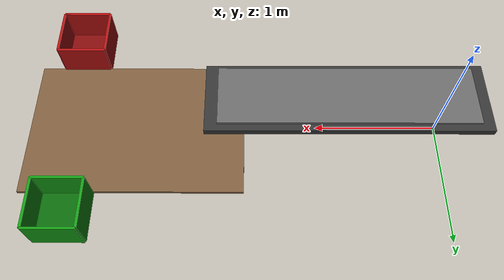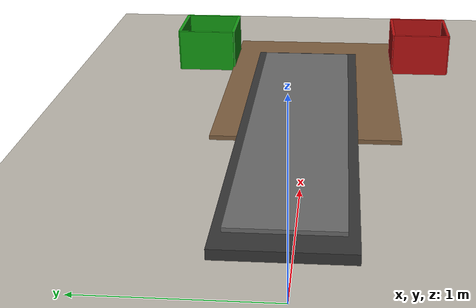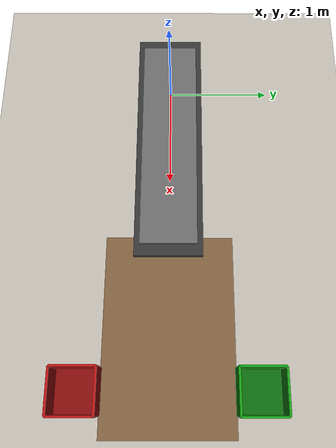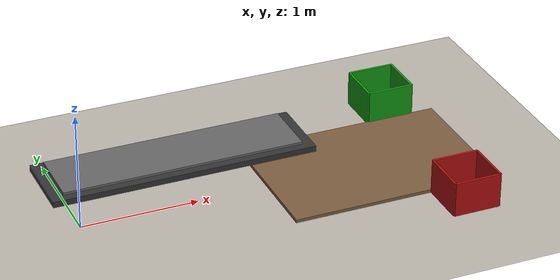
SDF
<?xml version="1.0"?>
<sdf version="1.6">
  <world name="warehouse">

    <!-- ── Physics ──────────────────────────────────────────────────────────── -->
    <physics name="default_physics" type="ode">
      <max_step_size>0.001</max_step_size>
      <real_time_factor>1</real_time_factor>
      <real_time_update_rate>1000</real_time_update_rate>
    </physics>

    <!-- ── Lighting: inline sun (replaces model://sun) ───────────────────── -->
    <light name="sun" type="directional">
      <cast_shadows>true</cast_shadows>
      <pose>0 0 10 0 0 0</pose>
      <diffuse>0.85 0.85 0.85 1</diffuse>
      <specular>0.20 0.20 0.20 1</specular>
      <attenuation>
        <range>1000</range>
        <constant>0.90</constant>
        <linear>0.01</linear>
        <quadratic>0.001</quadratic>
      </attenuation>
      <direction>-0.5 0.1 -0.9</direction>
    </light>

    <!-- Ambient fill light -->
    <light name="ambient_fill" type="directional">
      <cast_shadows>false</cast_shadows>
      <pose>0 0 5 0 0 0</pose>
      <diffuse>0.4 0.4 0.4 1</diffuse>
      <specular>0.05 0.05 0.05 1</specular>
      <direction>0 0 -1</direction>
    </light>

    <!-- ── Ground plane: inline model (replaces model://ground_plane) ─────── -->
    <model name="ground_plane">
      <static>true</static>
      <link name="ground_link">
        <collision name="ground_collision">
          <geometry>
            <plane>
              <normal>0 0 1</normal>
              <size>100 100</size>
            </plane>
          </geometry>
          <surface>
            <friction>
              <ode><mu>0.8</mu><mu2>0.8</mu2></ode>
            </friction>
          </surface>
        </collision>
        <visual name="ground_visual">
          <geometry>
            <plane>
              <normal>0 0 1</normal>
              <size>100 100</size>
            </plane>
          </geometry>
          <material>
            <ambient>0.72 0.70 0.66 1</ambient>
            <diffuse>0.72 0.70 0.66 1</diffuse>
          </material>
        </visual>
      </link>
    </model>

    <!-- ── Main Conveyor Belt ─────────────────────────────────────────────── -->
    <!--
      model://conveyor_belt resolves to warehouse_gazebo/models/conveyor_belt/
      Now works because model.config was converted from YAML to valid XML.
    -->
    <include>
      <uri>model://conveyor_belt</uri>
      <pose>0.8 0 0 0 0 0</pose>
    </include>

    <!-- ── Pick Area Table ────────────────────────────────────────────────── -->
    <model name="pick_table">
      <static>true</static>
      <pose>2.5 0 0.0 0 0 0</pose>
      <link name="table_link">
        <visual name="table_top_visual">
          <geometry><box><size>1.8 1.2 0.05</size></box></geometry>
          <material><ambient>0.40 0.30 0.20 1</ambient><diffuse>0.48 0.36 0.24 1</diffuse></material>
        </visual>
        <collision name="table_top_collision">
          <geometry><box><size>1.8 1.2 0.05</size></box></geometry>
        </collision>
      </link>
    </model>

    <!-- ── Good Product Bin (green) ──────────────────────────────────────── -->
    <!--
      FIX: model://bin_good never existed in the package. Replaced with an
      inline static box in green to visually mark the "accept" destination.
    -->
    <model name="bin_good">
      <static>true</static>
      <pose>3.0 0.8 0.15 0 0 0</pose>
      <link name="bin_good_link">
        <!-- back wall -->
        <visual name="back_visual">
          <pose>0 -0.2 0 0 0 0</pose>
          <geometry><box><size>0.40 0.02 0.30</size></box></geometry>
          <material><ambient>0.05 0.50 0.05 1</ambient><diffuse>0.07 0.60 0.07 1</diffuse></material>
        </visual>
        <collision name="back_collision">
          <pose>0 -0.2 0 0 0 0</pose>
          <geometry><box><size>0.40 0.02 0.30</size></box></geometry>
        </collision>
        <!-- front wall -->
        <visual name="front_visual">
          <pose>0 0.2 0 0 0 0</pose>
          <geometry><box><size>0.40 0.02 0.30</size></box></geometry>
          <material><ambient>0.05 0.50 0.05 1</ambient><diffuse>0.07 0.60 0.07 1</diffuse></material>
        </visual>
        <collision name="front_collision">
          <pose>0 0.2 0 0 0 0</pose>
          <geometry><box><size>0.40 0.02 0.30</size></box></geometry>
        </collision>
        <!-- left wall -->
        <visual name="left_visual">
          <pose>-0.2 0 0 0 0 0</pose>
          <geometry><box><size>0.02 0.40 0.30</size></box></geometry>
          <material><ambient>0.05 0.50 0.05 1</ambient><diffuse>0.07 0.60 0.07 1</diffuse></material>
        </visual>
        <collision name="left_collision">
          <pose>-0.2 0 0 0 0 0</pose>
          <geometry><box><size>0.02 0.40 0.30</size></box></geometry>
        </collision>
        <!-- right wall -->
        <visual name="right_visual">
          <pose>0.2 0 0 0 0 0</pose>
          <geometry><box><size>0.02 0.40 0.30</size></box></geometry>
          <material><ambient>0.05 0.50 0.05 1</ambient><diffuse>0.07 0.60 0.07 1</diffuse></material>
        </visual>
        <collision name="right_collision">
          <pose>0.2 0 0 0 0 0</pose>
          <geometry><box><size>0.02 0.40 0.30</size></box></geometry>
        </collision>
        <!-- floor -->
        <visual name="floor_visual">
          <pose>0 0 -0.14 0 0 0</pose>
          <geometry><box><size>0.40 0.40 0.02</size></box></geometry>
          <material><ambient>0.04 0.40 0.04 1</ambient></material>
        </visual>
        <collision name="floor_collision">
          <pose>0 0 -0.14 0 0 0</pose>
          <geometry><box><size>0.40 0.40 0.02</size></box></geometry>
        </collision>
      </link>
    </model>

    <!-- ── Defective Product Bin (red) ───────────────────────────────────── -->
    <!--
      FIX: model://bin_defective never existed. Replaced with inline red bin.
    -->
    <model name="bin_defective">
      <static>true</static>
      <pose>3.0 -0.8 0.15 0 0 0</pose>
      <link name="bin_defective_link">
        <visual name="back_visual">
          <pose>0 -0.2 0 0 0 0</pose>
          <geometry><box><size>0.40 0.02 0.30</size></box></geometry>
          <material><ambient>0.60 0.05 0.05 1</ambient><diffuse>0.70 0.06 0.06 1</diffuse></material>
        </visual>
        <collision name="back_collision">
          <pose>0 -0.2 0 0 0 0</pose>
          <geometry><box><size>0.40 0.02 0.30</size></box></geometry>
        </collision>
        <visual name="front_visual">
          <pose>0 0.2 0 0 0 0</pose>
          <geometry><box><size>0.40 0.02 0.30</size></box></geometry>
          <material><ambient>0.60 0.05 0.05 1</ambient><diffuse>0.70 0.06 0.06 1</diffuse></material>
        </visual>
        <collision name="front_collision">
          <pose>0 0.2 0 0 0 0</pose>
          <geometry><box><size>0.40 0.02 0.30</size></box></geometry>
        </collision>
        <visual name="left_visual">
          <pose>-0.2 0 0 0 0 0</pose>
          <geometry><box><size>0.02 0.40 0.30</size></box></geometry>
          <material><ambient>0.60 0.05 0.05 1</ambient><diffuse>0.70 0.06 0.06 1</diffuse></material>
        </visual>
        <collision name="left_collision">
          <pose>-0.2 0 0 0 0 0</pose>
          <geometry><box><size>0.02 0.40 0.30</size></box></geometry>
        </collision>
        <visual name="right_visual">
          <pose>0.2 0 0 0 0 0</pose>
          <geometry><box><size>0.02 0.40 0.30</size></box></geometry>
          <material><ambient>0.60 0.05 0.05 1</ambient><diffuse>0.70 0.06 0.06 1</diffuse></material>
        </visual>
        <collision name="right_collision">
          <pose>0.2 0 0 0 0 0</pose>
          <geometry><box><size>0.02 0.40 0.30</size></box></geometry>
        </collision>
        <visual name="floor_visual">
          <pose>0 0 -0.14 0 0 0</pose>
          <geometry><box><size>0.40 0.40 0.02</size></box></geometry>
          <material><ambient>0.50 0.04 0.04 1</ambient></material>
        </visual>
        <collision name="floor_collision">
          <pose>0 0 -0.14 0 0 0</pose>
          <geometry><box><size>0.40 0.40 0.02</size></box></geometry>
        </collision>
      </link>
    </model>

  </world>
</sdf>

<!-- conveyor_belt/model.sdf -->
<sdf version="1.6">
  <model name="conveyor_belt">

    <!--
      Keep the belt static=false so Gazebo simulates friction correctly.
      The chassis underneath is held in place by a fixed joint to the world.
    -->
    <static>false</static>

    <!-- ── Chassis (invisible, provides the fixed base) ──────────────────── -->
    <link name="chassis">
      <pose>0 0 0.45 0 0 0</pose>
      <inertial>
        <mass>50.0</mass>
        <inertia>
          <ixx>5.0</ixx><iyy>5.0</iyy><izz>5.0</izz>
          <ixy>0</ixy><ixz>0</ixz><iyz>0</iyz>
        </inertia>
      </inertial>
      <visual name="chassis_visual">
        <geometry>
          <box><size>2.2 0.6 0.05</size></box>
        </geometry>
        <material>
          <ambient>0.15 0.15 0.15 1</ambient>
          <diffuse>0.2  0.2  0.2  1</diffuse>
        </material>
      </visual>
      <collision name="chassis_collision">
        <geometry>
          <box><size>2.2 0.6 0.05</size></box>
        </geometry>
      </collision>
    </link>

    <!-- ── Belt surface ────────────────────────────────────────────────────── -->
    <link name="belt_link">
      <pose>0 0 0.5 0 0 0</pose>
      <inertial>
        <mass>5.0</mass>
        <inertia>
          <ixx>0.5</ixx><iyy>0.5</iyy><izz>0.5</izz>
          <ixy>0</ixy><ixz>0</ixz><iyz>0</iyz>
        </inertia>
      </inertial>

      <visual name="belt_visual">
        <geometry>
          <box><size>2.0 0.5 0.02</size></box>
        </geometry>
        <material>
          <ambient>0.3 0.3 0.3 1</ambient>
          <diffuse>0.4 0.4 0.4 1</diffuse>
        </material>
      </visual>

      <collision name="belt_collision">
        <geometry>
          <box><size>2.0 0.5 0.02</size></box>
        </geometry>
        <surface>
          <friction>
            <ode>
              <!-- High friction so products move reliably with the belt -->
              <mu>0.9</mu>
              <mu2>0.9</mu2>
              <!-- fdir1 sets the primary friction direction — along belt (X) -->
              <fdir1>1 0 0</fdir1>
            </ode>
          </friction>
          <contact>
            <ode>
              <kp>1000000.0</kp>
              <kd>100.0</kd>
            </ode>
          </contact>
        </surface>
      </collision>
    </link>

    <!-- ── Fix chassis to world ───────────────────────────────────────────── -->
    <joint name="chassis_to_world" type="fixed">
      <parent>world</parent>
      <child>chassis</child>
    </joint>

    <!-- ── Belt slides along X relative to chassis ───────────────────────── -->
    <joint name="belt_joint" type="prismatic">
      <parent>chassis</parent>
      <child>belt_link</child>
      <axis>
        <xyz>1 0 0</xyz>
        <limit>
          <!-- No hard position limits — the plugin manages velocity -->
          <lower>-1e16</lower>
          <upper>1e16</upper>
          <effort>100</effort>
          <velocity>2.0</velocity>
        </limit>
        <dynamics>
          <damping>10.0</damping>
          <friction>0.0</friction>
        </dynamics>
        <use_parent_model_frame>true</use_parent_model_frame>
      </axis>
    </joint>

    <!-- ── ROS2 conveyor plugins ──────────────────────────────────────────── -->

    <!-- Broadcasts belt_joint position/velocity as sensor_msgs/JointState. -->
    <plugin name="conveyor_joint_states" filename="libgazebo_ros_joint_state_publisher.so">
      <ros>
        <namespace>/conveyor</namespace>
        <remapping>joint_states:=joint_states</remapping>
      </ros>
      <update_rate>30</update_rate>
      <joint_name>belt_joint</joint_name>
    </plugin>

    <plugin name="conveyor_belt_control" filename="libconveyor_belt_plugin.so">
      <joint_name>belt_joint</joint_name>
      <initial_velocity>0.12</initial_velocity>
    </plugin>

  </model>
</sdf>
